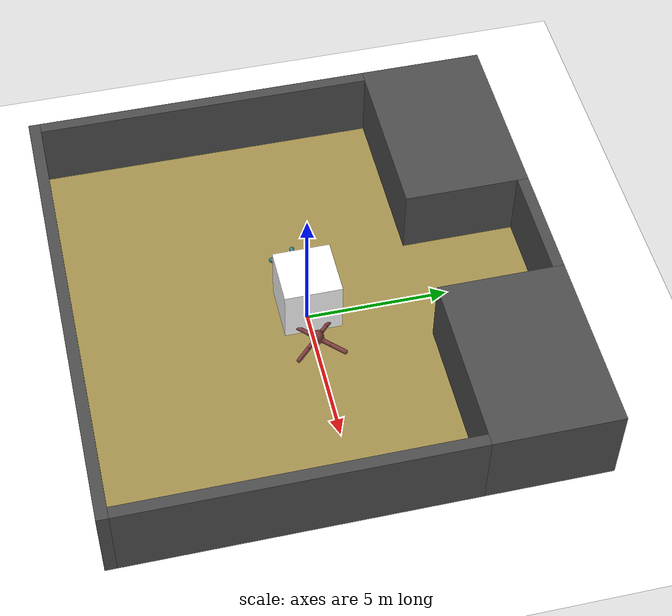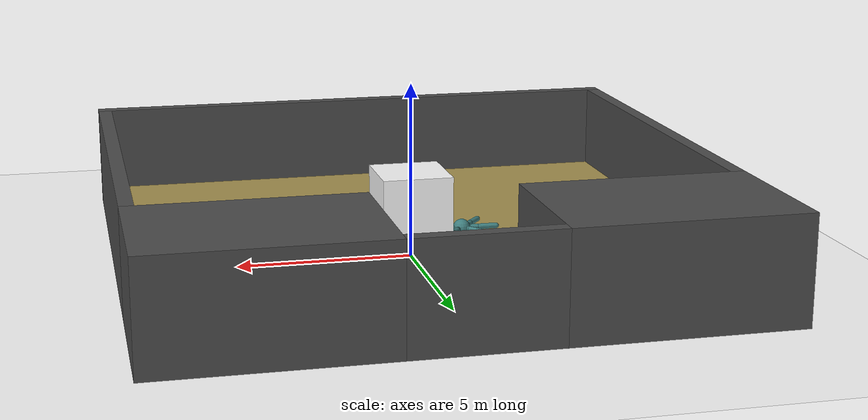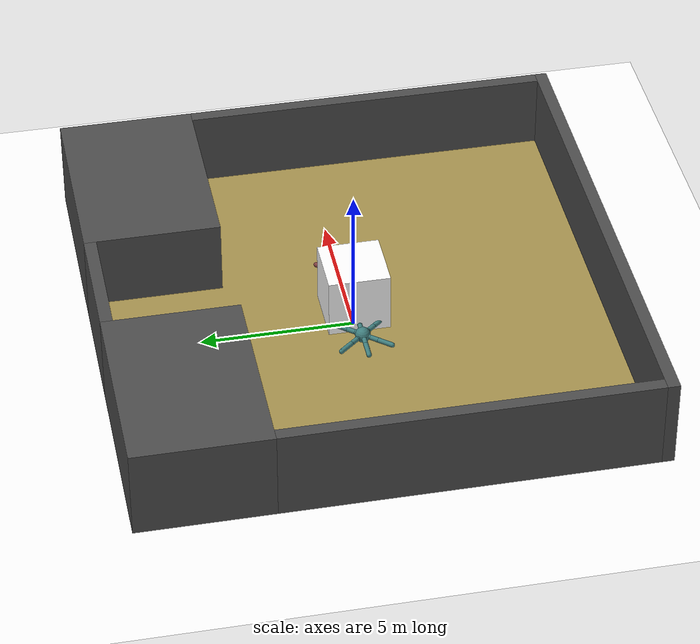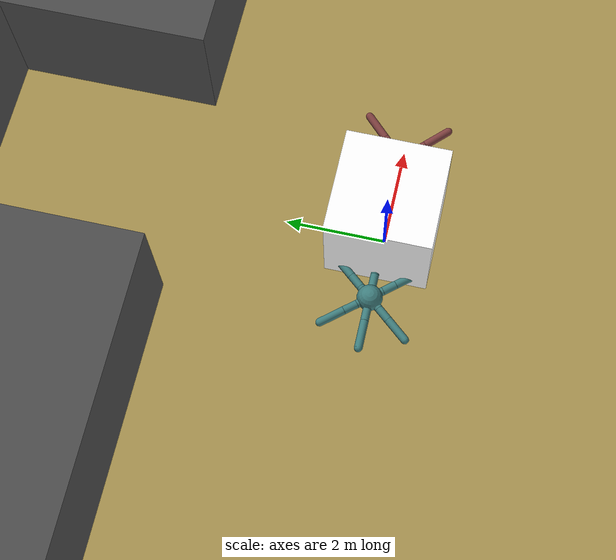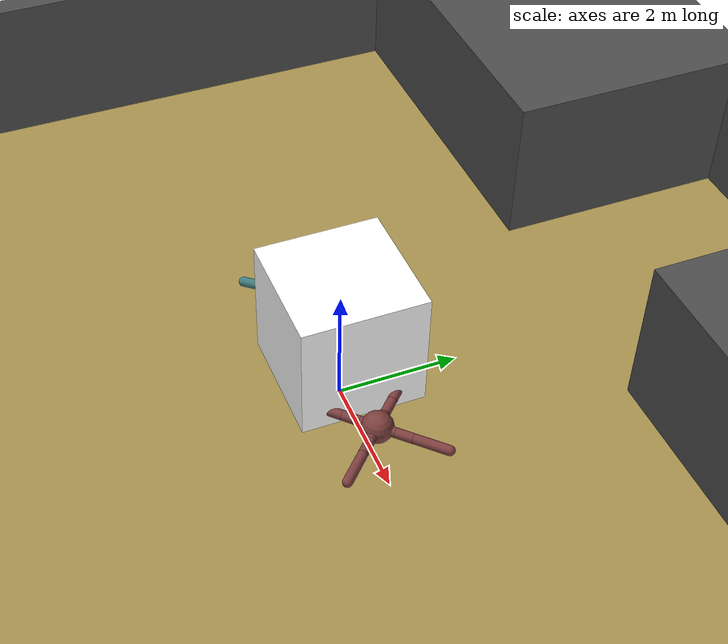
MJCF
<mujoco model="tatami">
  <compiler angle="degree" coordinate="local" inertiafromgeom="true" />
  <option integrator="RK4" timestep="0.01" />
  <size nconmax="1000" njmax="1000" />
  <default>
    <joint armature="1" damping="1" limited="true" />
  <default class="ant0"><geom conaffinity="1" condim="3" density="13.0" friction="1 0.5 0.5" margin="0.01" material="geom" rgba="0.5 0.25 0.25 1" />
    <motor ctrllimited="true" ctrlrange="-1. 1." />
  </default><default class="bug1"><geom conaffinity="1" condim="3" density="10.0" friction="1 0.5 0.5" margin="0.01" material="geom" rgba="0.25 0.5 0.5 1" />
    <motor ctrllimited="true" ctrlrange="-1. 1." />
  </default></default>
  <asset>
    <texture builtin="gradient" height="100" rgb1=".8 .8 1" rgb2="0 0 0" type="skybox" width="100" />
    <texture builtin="flat" height="1278" mark="cross" markrgb="1 1 1" name="texgeom" random="0.01" rgb1="0.8 0.6 0.4" rgb2="0.8 0.6 0.4" type="cube" width="127" />
    <texture builtin="flat" height="100" name="floorplane" rgb1=".2 0.2 0.2" rgb2="0 0 0" type="2d" width="100" />
    <texture builtin="flat" height="100" name="tatamiplane" rgb1=".65 0.57 0.31" rgb2="0 0 0" type="2d" width="100" />
    <material name="MatPlane" reflectance="0.1" shininess="1" specular="1" texrepeat="1 1" texture="floorplane" />
    <material name="TatamiPlane" reflectance="0.25" shininess="1" specular="1" texrepeat="1 1" texture="tatamiplane" />
    <material name="geom" texture="texgeom" texuniform="true" />
  </asset>
  <worldbody>
    <light cutoff="100" diffuse="1 1 1" dir="0 0 -1.3" directional="true" exponent="2" pos="0 0 1.3" specular=".5 .5 .5" />
    <geom conaffinity="1" condim="3" contype="1" friction="1 .7 .7" material="MatPlane" name="floor" pos="0 0 -.025" rgba="1 1 1 1" size="20 20 0.125" type="plane" />

    <geom conaffinity="1" condim="3" contype="1" friction="1 .7 .7" material="TatamiPlane" name="tatami" pos="0 0 0.25" size="8.30 8.30 0.25" type="box" />
    <geom fromto="-8.00 8.00 0.5  8.00 8.00 0.5" name="topborder" rgba=".18 .23 .38 1" size=".03" type="cylinder" />
    <geom fromto="8.00 -8.00 0.5  8.00 8.00 0.5" name="rightborder" rgba=".18 .23 .38 1" size=".03" type="cylinder" />
    <geom fromto="-8.00 -8.00 0.5  8.00 -8.00 0.5" name="bottomborder" rgba=".18 .23 .38 1" size=".03" type="cylinder" />
    <geom fromto="-8.00 -8.00 0.5  -8.00 8.00 0.5" name="leftborder" rgba=".18 .23 .38 1" size=".03" type="cylinder" />

    <body name="south_wall" pos="0 -8.15 1.5">
      <geom name="s_wall" rgba="0.3 0.3 0.3 1" size="8.35 0.20 1.5" type="box" />
    </body>
    <body name="north_wall" pos="0 8.15 1.5">
      <geom name="n_wall" rgba="0.3 0.3 0.3 1" size="2 0.20 1.5" type="box" />
    </body>

    <body name="west_wall" pos="-8.15 -2 1.5">
      <geom name="w_wall" rgba="0.3 0.3 0.3 1" size="0.2 5.95 1.5" type="box" />
    </body>
    <body name="east_wall" pos="8.15 -2 1.5">
      <geom name="e_wall" rgba="0.3 0.3 0.3 1" size="0.2 5.95 1.5" type="box" />
    </body>

    <body name="northwest" pos="-5.175 6.15 1.5">
      <geom name="nw_wall" rgba="0.3 0.3 0.3 1" size="3.175 2.2 1.5" type="box" />
    </body>
    <body name="northeast" pos="5.175 6.15 1.5">
      <geom name="ne_wall" rgba="0.3 0.3 0.3 1" size="3.175 2.2 1.5" type="box" />
    </body>

    <body name="pushable_obj" pos="0 0 1.5">
      <geom contype="1" mass="1" material="" rgba="1 1 1 1" size="1 1 1" type="box" />
      <joint armature="0" axis="1 0 0" damping="0.0" limited="true" margin="0.01" pos="0 0 0" range="-10 10" type="slide" />
      <joint armature="0" axis="0 1 0" damping="0.0" limited="true" margin="0.01" pos="0 0 0" range="-10 10" type="slide" />
    </body>

  <body name="ant0/torso" pos="1.5 0.0 0.75">
    <geom class="ant0" name="ant0/torso_geom" pos="0 0 0" size="0.25" type="sphere" />
    <joint armature="0" damping="0" limited="false" margin="0.01" name="ant0/root" pos="0 0 0" type="free" />

    <body name="ant0/front_left_leg" pos="0 0 0">
      <geom class="ant0" fromto="0.0 0.0 0.0 -0.2 0.2 0.0" name="ant0/aux_1_geom" size="0.08" type="capsule" />
      <body name="ant0/aux_11" pos="-0.2 0.2 0">
        <joint axis="0 0 1" name="ant0/hip_1" pos="0.0 0.0 0.0" range="-30 30" type="hinge" />
        <geom class="ant0" fromto="0.0 0.0 0.0 -0.2 0.2 0.0" name="ant0/front_left_leg_geom" size="0.08" type="capsule" />
        <body name="ant0/aux_12" pos="-0.2 0.2 0">
          <joint axis="1 1 0" name="ant0/ankle_1" pos="0.0 0.0 0.0" range="-70 -30" type="hinge" />
          <geom class="ant0" fromto="0.0 0.0 0.0 -0.4 0.4 0.0" name="ant0/front_left_ankle_geom" size="0.08" type="capsule" />
        </body>
      </body>
    </body>

    <body name="ant0/front_right_leg" pos="0 0 0">
      <geom class="ant0" fromto="0.0 0.0 0.0 0.2 0.2 0.0" name="ant0/aux_2_geom" size="0.08" type="capsule" />
      <body name="ant0/aux_21" pos="0.2 0.2 0">
        <joint axis="0 0 1" name="ant0/hip_2" pos="0.0 0.0 0.0" range="-30 30" type="hinge" />
        <geom class="ant0" fromto="0.0 0.0 0.0 0.2 0.2 0.0" name="ant0/front_right_leg_geom" size="0.08" type="capsule" />
        <body name="ant0/aux_22" pos="0.2 0.2 0">
          <joint axis="-1 1 0" name="ant0/ankle_2" pos="0.0 0.0 0.0" range="30 70" type="hinge" />
          <geom class="ant0" fromto="0.0 0.0 0.0 0.4 0.4 0.0" name="ant0/front_right_ankle_geom" size="0.08" type="capsule" />
        </body>
      </body>
    </body>

    <body name="ant0/back_left_leg" pos="0 0 0">
      <geom class="ant0" fromto="0.0 0.0 0.0 -0.2 -0.2 0.0" name="ant0/aux_3_geom" size="0.08" type="capsule" />
      <body name="ant0/aux_31" pos="-0.2 -0.2 0">
        <joint axis="0 0 1" name="ant0/hip_3" pos="0.0 0.0 0.0" range="-30 30" type="hinge" />
        <geom class="ant0" fromto="0.0 0.0 0.0 -0.2 -0.2 0.0" name="ant0/back_left_leg_geom" size="0.08" type="capsule" />
        <body name="ant0/aux_32" pos="-0.2 -0.2 0">
          <joint axis="-1 1 0" name="ant0/ankle_3" pos="0.0 0.0 0.0" range="-70 -30" type="hinge" />
          <geom class="ant0" fromto="0.0 0.0 0.0 -0.4 -0.4 0.0" name="ant0/back_left_ankle_geom" size="0.08" type="capsule" />
        </body>
      </body>
    </body>
    <body name="ant0/back_right_leg" pos="0 0 0">
      <geom class="ant0" fromto="0.0 0.0 0.0 0.2 -0.2 0.0" name="ant0/aux_4_geom" size="0.08" type="capsule" />
      <body name="ant0/aux_41" pos="0.2 -0.2 0">
        <joint axis="0 0 1" name="ant0/hip_4" pos="0.0 0.0 0.0" range="-30 30" type="hinge" />
        <geom class="ant0" fromto="0.0 0.0 0.0 0.2 -0.2 0.0" name="ant0/back_right_leg_geom" size="0.08" type="capsule" />
        <body name="ant0/aux_42" pos="0.2 -0.2 0">
          <joint axis="1 1 0" name="ant0/ankle_4" pos="0.0 0.0 0.0" range="30 70" type="hinge" />
          <geom class="ant0" fromto="0.0 0.0 0.0 0.4 -0.4 0.0" name="ant0/back_right_ankle_geom" size="0.08" type="capsule" />
        </body>
      </body>
    </body>
  </body>
  <body name="bug1/torso" pos="-1.5 1.8369701987210297e-16 0.75">
    <geom class="bug1" name="bug1/torso_geom" pos="0 0 0" size="0.25" type="sphere" />
    <joint armature="0" damping="0" limited="false" margin="0.01" name="bug1/root" pos="0 0 0" type="free" />

    <body name="bug1/back_left_leg" pos="0 0 0">
      <geom class="bug1" fromto="0 0 0 0.18 0.215 0" name="bug1/aux_1_geom" size="0.08" type="capsule" />
      <body name="bug1/aux_11" pos="0.18 0.215 0">
        <joint axis="0 0 1" name="bug1/hip_1" pos="0 0 0" range="-30 30" type="hinge" />
        <geom class="bug1" fromto="0 0 0 0.18 0.215 0" name="bug1/back_left_leg_geom" size="0.08" type="capsule" />
        <body name="bug1/aux_12" pos="0.18 0.215 0">
          <joint axis="-1 1 0" name="bug1/ankle_1" pos="0 0 0" range="30 70" type="hinge" />
          <geom class="bug1" fromto="0 0 0 0.324 0.387 0" name="bug1/back_left_ankle_geom" size="0.08" type="capsule" />
        </body>
      </body>
    </body>

    <body name="bug1/back_right_leg" pos="0 0 0">
      <geom class="bug1" fromto="0 0 0 -0.18 0.215 0" name="bug1/aux_2_geom" size="0.08" type="capsule" />
      <body name="bug1/aux_21" pos="-0.18 0.215 0">
        <joint axis="0 0 1" name="bug1/hip_2" pos="0 0 0" range="-30 30" type="hinge" />
        <geom class="bug1" fromto="0 0 0 -0.18 0.215 0" name="bug1/back_right_leg_geom" size="0.08" type="capsule" />
        <body name="bug1/aux_22" pos="-0.18 0.215 0">
          <joint axis="1 1 0" name="bug1/ankle_2" pos="0 0 0" range="-70 -30" type="hinge" />
          <geom class="bug1" fromto="0 0 0 -0.324 0.387 0" name="bug1/back_right_ankle_geom" size="0.08" type="capsule" />
        </body>
      </body>
    </body>

    <body name="bug1/middle_right_leg" pos="0 0 0">
      <geom class="bug1" fromto="0 0 0 -0.2 0 0" name="bug1/aux_3_geom" size="0.08" type="capsule" />
      <body name="bug1/aux_31" pos="-0.2 0 0">
        <joint axis="0 0 1" name="bug1/hip_3" pos="0 0 0" range="-30 30" type="hinge" />
        <geom class="bug1" fromto="0 0 0 -0.275 0 0" name="bug1/middle_right_leg_geom" size="0.08" type="capsule" />
        <body name="bug1/aux_32" pos="-0.275 0 0">
          <joint axis="0 1 0" name="bug1/ankle_3" pos="0 0 0" range="-70 -30" type="hinge" />
          <geom class="bug1" fromto="0 0 0 -0.55 0 0" name="bug1/middle_right_ankle_geom" size="0.08" type="capsule" />
        </body>
      </body>
    </body>

    <body name="bug1/middle_left_leg" pos="0 0 0">
      <geom class="bug1" fromto="0 0 0 0.2 0 0" name="bug1/aux_4_geom" size="0.08" type="capsule" />
      <body name="bug1/aux_41" pos="0.2 0 0">
        <joint axis="0 0 1" name="bug1/hip_4" pos="0 0 0" range="-30 30" type="hinge" />
        <geom class="bug1" fromto="0 0 0 0.275 0 0" name="bug1/middle_left_leg_geom" size="0.08" type="capsule" />
        <body name="bug1/aux_42" pos="0.275 0 0">
          <joint axis="0 1 0" name="bug1/ankle_4" pos="0 0 0" range="30 70" type="hinge" />
          <geom class="bug1" fromto="0 0 0 0.55 0 0" name="bug1/middle_left_ankle_geom" size="0.08" type="capsule" />
        </body>
      </body>
    </body>

    <body name="bug1/front_right_leg" pos="0 0 0">
      <geom class="bug1" fromto="0 0 0 -0.18 -0.215 0" name="bug1/aux_5_geom" size="0.08" type="capsule" />
      <body name="bug1/aux_51" pos="-0.18 -0.215 0">
        <joint axis="0 0 1" name="bug1/hip_5" pos="0 0 0" range="-30 30" type="hinge" />
        <geom class="bug1" fromto="0 0 0 -0.18 -0.215 0" name="bug1/front_right_leg_geom" size="0.08" type="capsule" />
        <body name="bug1/aux_52" pos="-0.18 -0.215 0">
          <joint axis="-1 1 0" name="bug1/ankle_5" pos="0 0 0" range="-70 -30" type="hinge" />
          <geom class="bug1" fromto="0 0 0 -0.324 -0.387 0" name="bug1/front_right_ankle_geom" size="0.08" type="capsule" />
        </body>
      </body>
    </body>

    <body name="bug1/front_left_leg" pos="0 0 0">
      <geom class="bug1" fromto="0 0 0 0.18 -0.215 0" name="bug1/aux_6_geom" size="0.08" type="capsule" />
      <body name="bug1/aux_61" pos="0.18 -0.215 0">
        <joint axis="0 0 1" name="bug1/hip_6" pos="0 0 0" range="-30 30" type="hinge" />
        <geom class="bug1" fromto="0 0 0 0.18 -0.215 0" name="bug1/front_left_leg_geom" size="0.08" type="capsule" />
        <body name="bug1/aux_62" pos="0.18 -0.215 0">
          <joint axis="1 1 0" name="bug1/ankle_6" pos="0 0 0" range="30 70" type="hinge" />
          <geom class="bug1" fromto="0 0 0 0.324 -0.387 0" name="bug1/front_left_ankle_geom" size="0.08" type="capsule" />
        </body>
      </body>
    </body>
  </body>
  </worldbody>
<actuator>
    <motor class="ant0" ctrllimited="true" ctrlrange="-1.0 1.0" gear="150" joint="ant0/hip_1" />
    <motor class="ant0" ctrllimited="true" ctrlrange="-1.0 1.0" gear="150" joint="ant0/ankle_1" />
    <motor class="ant0" ctrllimited="true" ctrlrange="-1.0 1.0" gear="150" joint="ant0/hip_2" />
    <motor class="ant0" ctrllimited="true" ctrlrange="-1.0 1.0" gear="150" joint="ant0/ankle_2" />
    <motor class="ant0" ctrllimited="true" ctrlrange="-1.0 1.0" gear="150" joint="ant0/hip_3" />
    <motor class="ant0" ctrllimited="true" ctrlrange="-1.0 1.0" gear="150" joint="ant0/ankle_3" />
    <motor class="ant0" ctrllimited="true" ctrlrange="-1.0 1.0" gear="150" joint="ant0/hip_4" />
    <motor class="ant0" ctrllimited="true" ctrlrange="-1.0 1.0" gear="150" joint="ant0/ankle_4" />
  <motor class="bug1" ctrllimited="true" ctrlrange="-1.0 1.0" gear="150" joint="bug1/hip_1" />
    <motor class="bug1" ctrllimited="true" ctrlrange="-1.0 1.0" gear="150" joint="bug1/ankle_1" />
    <motor class="bug1" ctrllimited="true" ctrlrange="-1.0 1.0" gear="150" joint="bug1/hip_2" />
    <motor class="bug1" ctrllimited="true" ctrlrange="-1.0 1.0" gear="150" joint="bug1/ankle_2" />
    <motor class="bug1" ctrllimited="true" ctrlrange="-1.0 1.0" gear="150" joint="bug1/hip_3" />
    <motor class="bug1" ctrllimited="true" ctrlrange="-1.0 1.0" gear="150" joint="bug1/ankle_3" />
    <motor class="bug1" ctrllimited="true" ctrlrange="-1.0 1.0" gear="150" joint="bug1/hip_4" />
    <motor class="bug1" ctrllimited="true" ctrlrange="-1.0 1.0" gear="150" joint="bug1/ankle_4" />
    <motor class="bug1" ctrllimited="true" ctrlrange="-1.0 1.0" gear="150" joint="bug1/hip_5" />
    <motor class="bug1" ctrllimited="true" ctrlrange="-1.0 1.0" gear="150" joint="bug1/ankle_5" />
    <motor class="bug1" ctrllimited="true" ctrlrange="-1.0 1.0" gear="150" joint="bug1/hip_6" />
    <motor class="bug1" ctrllimited="true" ctrlrange="-1.0 1.0" gear="150" joint="bug1/ankle_6" />
  </actuator>
  <sensor>

    <jointpos joint="ant0/hip_1" name="ant0/pos_hip_1" />
    <jointpos joint="ant0/hip_2" name="ant0/pos_hip_2" />
    <jointpos joint="ant0/hip_3" name="ant0/pos_hip_3" />
    <jointpos joint="ant0/hip_4" name="ant0/pos_hip_4" />
    <jointpos joint="ant0/ankle_1" name="ant0/pos_ankle_1" />
    <jointpos joint="ant0/ankle_2" name="ant0/pos_ankle_2" />
    <jointpos joint="ant0/ankle_3" name="ant0/pos_ankle_3" />
    <jointpos joint="ant0/ankle_4" name="ant0/pos_ankle_4" />

    <jointvel joint="ant0/hip_1" name="ant0/vel_hip_1" />
    <jointvel joint="ant0/hip_2" name="ant0/vel_hip_2" />
    <jointvel joint="ant0/hip_3" name="ant0/vel_hip_3" />
    <jointvel joint="ant0/hip_4" name="ant0/vel_hip_4" />
    <jointvel joint="ant0/ankle_1" name="ant0/vel_ankle_1" />
    <jointvel joint="ant0/ankle_2" name="ant0/vel_ankle_2" />
    <jointvel joint="ant0/ankle_3" name="ant0/vel_ankle_3" />
    <jointvel joint="ant0/ankle_4" name="ant0/vel_ankle_4" />
  <jointpos joint="bug1/hip_1" name="bug1/pos_hip_1" />
    <jointpos joint="bug1/hip_2" name="bug1/pos_hip_2" />
    <jointpos joint="bug1/hip_3" name="bug1/pos_hip_3" />
    <jointpos joint="bug1/hip_4" name="bug1/pos_hip_4" />
    <jointpos joint="bug1/hip_5" name="bug1/pos_hip_5" />
    <jointpos joint="bug1/hip_6" name="bug1/pos_hip_6" />
    <jointpos joint="bug1/ankle_1" name="bug1/pos_ankle_1" />
    <jointpos joint="bug1/ankle_2" name="bug1/pos_ankle_2" />
    <jointpos joint="bug1/ankle_3" name="bug1/pos_ankle_3" />
    <jointpos joint="bug1/ankle_4" name="bug1/pos_ankle_4" />
    <jointpos joint="bug1/ankle_5" name="bug1/pos_ankle_5" />
    <jointpos joint="bug1/ankle_6" name="bug1/pos_ankle_6" />

    <jointvel joint="bug1/hip_1" name="bug1/vel_hip_1" />
    <jointvel joint="bug1/hip_2" name="bug1/vel_hip_2" />
    <jointvel joint="bug1/hip_3" name="bug1/vel_hip_3" />
    <jointvel joint="bug1/hip_4" name="bug1/vel_hip_4" />
    <jointvel joint="bug1/hip_5" name="bug1/vel_hip_5" />
    <jointvel joint="bug1/hip_6" name="bug1/vel_hip_6" />
    <jointvel joint="bug1/ankle_1" name="bug1/vel_ankle_1" />
    <jointvel joint="bug1/ankle_2" name="bug1/vel_ankle_2" />
    <jointvel joint="bug1/ankle_3" name="bug1/vel_ankle_3" />
    <jointvel joint="bug1/ankle_4" name="bug1/vel_ankle_4" />
    <jointvel joint="bug1/ankle_5" name="bug1/vel_ankle_5" />
    <jointvel joint="bug1/ankle_6" name="bug1/vel_ankle_6" />
  </sensor>
</mujoco>
